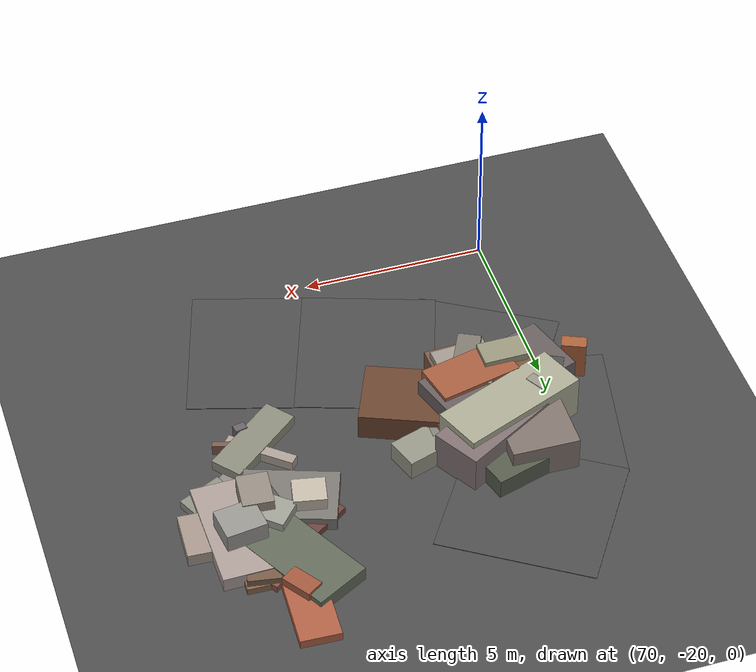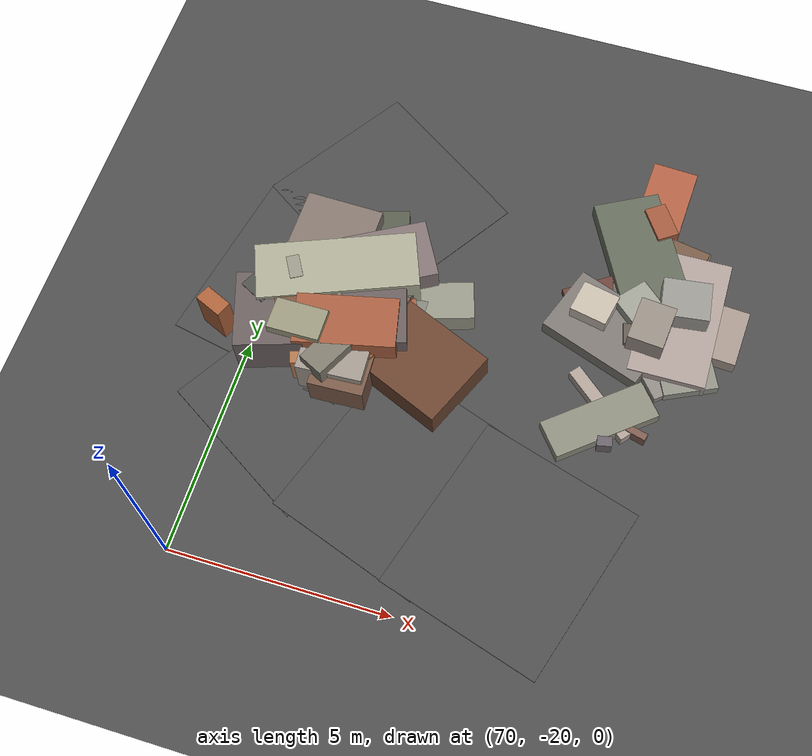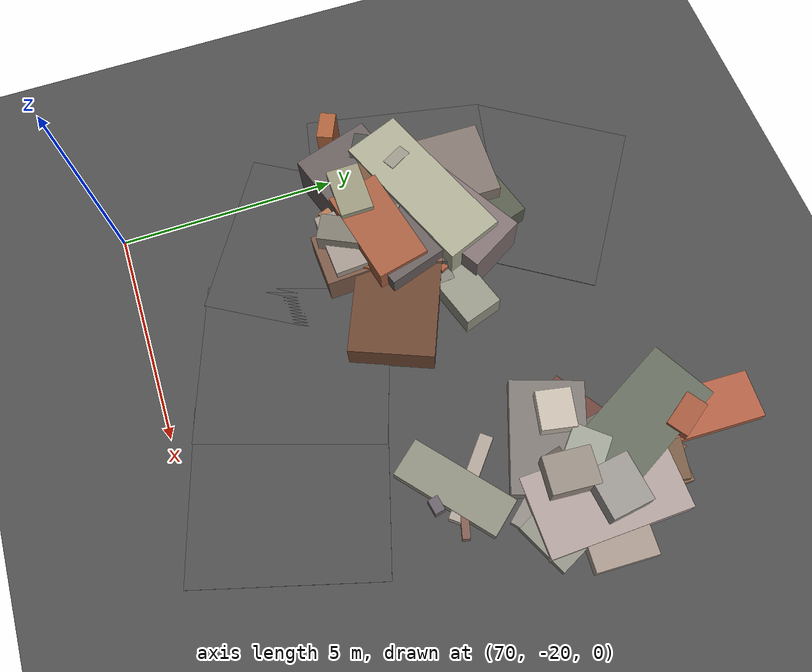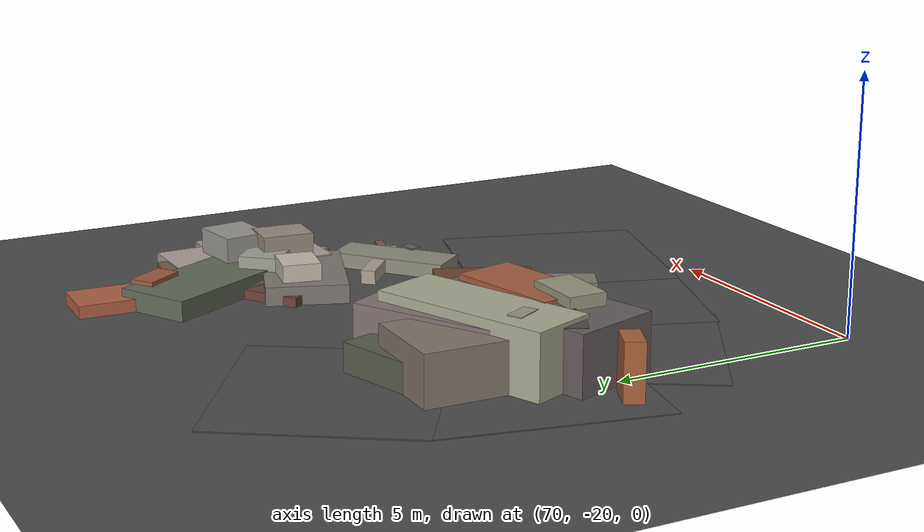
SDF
<sdf version="1.6">
 <world name="navitas_arena">
  <model name="ground_plane">
   <static>true</static>
   <link name="link">
    <collision name="collision">
     <geometry><plane><normal>0 0 1</normal><size>400 400</size></plane></geometry>
     <surface><friction><ode><mu>0.800</mu><mu2>0.800</mu2></ode></friction></surface>
    </collision>
    <visual name="visual">
     <cast_shadows>false</cast_shadows>
     <geometry><plane><normal>0 0 1</normal><size>400 400</size></plane></geometry>
     <material>
      <specular>0.04 0.04 0.04 1</specular>
      <script>
       <uri>file://media/materials/scripts/navitas_asphalt.material</uri>
       <name>Navitas/RealArenaAsphalt</name>
      </script>
     </material>
    </visual>
   </link>
  </model>
  <model name="road_zor_1_4">
   <static>true</static>
   <pose>76.927 -17.886 0.040 0 0 2.853</pose>
   <link name="link">
    <collision name="col"><geometry><box><size>3.825 4.200 0.020</size></box></geometry></collision>
    <visual name="vis">
     <geometry><box><size>3.825 4.200 0.020</size></box></geometry>
     <material>
      <specular>0.04 0.04 0.04 1</specular>
      <script>
       <uri>file://media/materials/scripts/navitas_asphalt.material</uri>
       <name>Navitas/RealArenaAsphalt</name>
      </script>
     </material>
    </visual>
   </link>
  </model>
  <model name="road_zor_1_5">
   <static>true</static>
   <pose>74.215 -17.017 0.040 0 0 2.810</pose>
   <link name="link">
    <collision name="col"><geometry><box><size>3.672 4.200 0.020</size></box></geometry></collision>
    <visual name="vis">
     <geometry><box><size>3.672 4.200 0.020</size></box></geometry>
     <material>
      <specular>0.04 0.04 0.04 1</specular>
      <script>
       <uri>file://media/materials/scripts/navitas_asphalt.material</uri>
       <name>Navitas/RealArenaAsphalt</name>
      </script>
     </material>
    </visual>
   </link>
  </model>
  <model name="road_zor_1_6">
   <static>true</static>
   <pose>71.618 -15.783 0.040 0 0 2.595</pose>
   <link name="link">
    <collision name="col"><geometry><box><size>3.911 4.200 0.020</size></box></geometry></collision>
    <visual name="vis">
     <geometry><box><size>3.911 4.200 0.020</size></box></geometry>
     <material>
      <specular>0.04 0.04 0.04 1</specular>
      <script>
       <uri>file://media/materials/scripts/navitas_asphalt.material</uri>
       <name>Navitas/RealArenaAsphalt</name>
      </script>
     </material>
    </visual>
   </link>
  </model>
  <model name="road_zor_1_7">
   <static>true</static>
   <pose>70.666 -13.328 0.040 0 0 1.373</pose>
   <link name="link">
    <collision name="col"><geometry><box><size>4.310 4.200 0.020</size></box></geometry></collision>
    <visual name="vis">
     <geometry><box><size>4.310 4.200 0.020</size></box></geometry>
     <material>
      <specular>0.04 0.04 0.04 1</specular>
      <script>
       <uri>file://media/materials/scripts/navitas_asphalt.material</uri>
       <name>Navitas/RealArenaAsphalt</name>
      </script>
     </material>
    </visual>
   </link>
  </model>
  <model name="road_zor_1_8">
   <static>true</static>
   <pose>71.809 -10.426 0.040 0 0 0.990</pose>
   <link name="link">
    <collision name="col"><geometry><box><size>3.844 4.200 0.020</size></box></geometry></collision>
    <visual name="vis">
     <geometry><box><size>3.844 4.200 0.020</size></box></geometry>
     <material>
      <specular>0.04 0.04 0.04 1</specular>
      <script>
       <uri>file://media/materials/scripts/navitas_asphalt.material</uri>
       <name>Navitas/RealArenaAsphalt</name>
      </script>
     </material>
    </visual>
   </link>
  </model>
  <model name="blk_zor_1_0_0">
   <static>true</static>
   <pose>71.746 -13.581 0.000 0 0 0</pose>
   <link name="link">
    <collision name="col_0">
     <pose>0.542 -0.612 0.416 0.000 0.000 1.613</pose>
     <geometry><box><size>3.251 1.247 0.833</size></box></geometry>
    </collision>
    <visual name="vis_0">
     <pose>0.542 -0.612 0.416 0.000 0.000 1.613</pose>
     <geometry><box><size>3.251 1.247 0.833</size></box></geometry>
     <material>
      <ambient>0.45 0.33 0.26 1</ambient>
      <diffuse>0.48 0.35 0.28 1</diffuse>
      <specular>0.05 0.05 0.045 1</specular>
     </material>
    </visual>
    <collision name="col_1">
     <pose>0.342 -1.020 0.516 0.000 0.000 1.627</pose>
     <geometry><box><size>1.991 1.494 1.031</size></box></geometry>
    </collision>
    <visual name="vis_1">
     <pose>0.342 -1.020 0.516 0.000 0.000 1.627</pose>
     <geometry><box><size>1.991 1.494 1.031</size></box></geometry>
     <material>
      <ambient>0.58 0.54 0.51 1</ambient>
      <diffuse>0.63 0.59 0.55 1</diffuse>
      <specular>0.05 0.05 0.045 1</specular>
     </material>
    </visual>
    <collision name="col_2">
     <pose>0.288 -0.485 0.595 0.000 0.000 4.145</pose>
     <geometry><box><size>2.302 0.295 1.190</size></box></geometry>
    </collision>
    <visual name="vis_2">
     <pose>0.288 -0.485 0.595 0.000 0.000 4.145</pose>
     <geometry><box><size>2.302 0.295 1.190</size></box></geometry>
     <material>
      <ambient>0.64 0.58 0.57 1</ambient>
      <diffuse>0.69 0.63 0.62 1</diffuse>
      <specular>0.05 0.05 0.045 1</specular>
     </material>
    </visual>
    <collision name="col_3">
     <pose>0.415 -0.786 0.655 0.000 0.000 3.367</pose>
     <geometry><box><size>2.267 1.190 1.309</size></box></geometry>
    </collision>
    <visual name="vis_3">
     <pose>0.415 -0.786 0.655 0.000 0.000 3.367</pose>
     <geometry><box><size>2.267 1.190 1.309</size></box></geometry>
     <material>
      <ambient>0.60 0.34 0.23 1</ambient>
      <diffuse>0.65 0.37 0.25 1</diffuse>
      <specular>0.05 0.05 0.045 1</specular>
     </material>
    </visual>
    <collision name="col_4">
     <pose>-0.790 -0.841 0.621 0.000 0.000 3.733</pose>
     <geometry><box><size>0.666 0.979 1.242</size></box></geometry>
    </collision>
    <visual name="vis_4">
     <pose>-0.790 -0.841 0.621 0.000 0.000 3.733</pose>
     <geometry><box><size>0.666 0.979 1.242</size></box></geometry>
     <material>
      <ambient>0.43 0.31 0.22 1</ambient>
      <diffuse>0.47 0.33 0.24 1</diffuse>
      <specular>0.05 0.05 0.045 1</specular>
     </material>
    </visual>
    <collision name="col_5">
     <pose>-0.656 0.826 0.511 0.000 0.000 1.552</pose>
     <geometry><box><size>2.773 1.798 1.023</size></box></geometry>
    </collision>
    <visual name="vis_5">
     <pose>-0.656 0.826 0.511 0.000 0.000 1.552</pose>
     <geometry><box><size>2.773 1.798 1.023</size></box></geometry>
     <material>
      <ambient>0.47 0.43 0.40 1</ambient>
      <diffuse>0.51 0.46 0.43 1</diffuse>
      <specular>0.05 0.05 0.045 1</specular>
     </material>
    </visual>
    <collision name="col_6">
     <pose>0.451 0.784 0.307 0.000 0.000 1.860</pose>
     <geometry><box><size>3.401 1.639 0.614</size></box></geometry>
    </collision>
    <visual name="vis_6">
     <pose>0.451 0.784 0.307 0.000 0.000 1.860</pose>
     <geometry><box><size>3.401 1.639 0.614</size></box></geometry>
     <material>
      <ambient>0.31 0.33 0.28 1</ambient>
      <diffuse>0.34 0.36 0.30 1</diffuse>
      <specular>0.05 0.05 0.045 1</specular>
     </material>
    </visual>
    <collision name="col_7">
     <pose>0.971 0.265 0.277 0.000 0.000 3.455</pose>
     <geometry><box><size>3.937 0.910 0.554</size></box></geometry>
    </collision>
    <visual name="vis_7">
     <pose>0.971 0.265 0.277 0.000 0.000 3.455</pose>
     <geometry><box><size>3.937 0.910 0.554</size></box></geometry>
     <material>
      <ambient>0.55 0.54 0.49 1</ambient>
      <diffuse>0.59 0.59 0.53 1</diffuse>
      <specular>0.05 0.05 0.045 1</specular>
     </material>
    </visual>
    <collision name="col_8">
     <pose>-0.226 0.462 0.647 0.000 0.000 3.524</pose>
     <geometry><box><size>3.614 1.349 1.294</size></box></geometry>
    </collision>
    <visual name="vis_8">
     <pose>-0.226 0.462 0.647 0.000 0.000 3.524</pose>
     <geometry><box><size>3.614 1.349 1.294</size></box></geometry>
     <material>
      <ambient>0.62 0.62 0.54 1</ambient>
      <diffuse>0.67 0.67 0.58 1</diffuse>
      <specular>0.05 0.05 0.045 1</specular>
     </material>
    </visual>
   </link>
  </model>
  <model name="blk_zor_1_0_1">
   <static>true</static>
   <pose>72.374 -14.775 0.000 0 0 0</pose>
   <link name="link">
    <collision name="col_0">
     <pose>-0.674 -0.104 0.427 0.000 0.000 3.498</pose>
     <geometry><box><size>1.330 0.849 0.855</size></box></geometry>
    </collision>
    <visual name="vis_0">
     <pose>-0.674 -0.104 0.427 0.000 0.000 3.498</pose>
     <geometry><box><size>1.330 0.849 0.855</size></box></geometry>
     <material>
      <ambient>0.64 0.43 0.28 1</ambient>
      <diffuse>0.69 0.46 0.30 1</diffuse>
      <specular>0.05 0.05 0.045 1</specular>
     </material>
    </visual>
    <collision name="col_1">
     <pose>0.456 0.495 0.430 0.000 0.000 4.393</pose>
     <geometry><box><size>2.258 0.170 0.861</size></box></geometry>
    </collision>
    <visual name="vis_1">
     <pose>0.456 0.495 0.430 0.000 0.000 4.393</pose>
     <geometry><box><size>2.258 0.170 0.861</size></box></geometry>
     <material>
      <ambient>0.50 0.35 0.26 1</ambient>
      <diffuse>0.54 0.38 0.29 1</diffuse>
      <specular>0.05 0.05 0.045 1</specular>
     </material>
    </visual>
    <collision name="col_2">
     <pose>-0.353 -0.331 0.654 0.000 0.000 4.251</pose>
     <geometry><box><size>1.123 0.624 1.308</size></box></geometry>
    </collision>
    <visual name="vis_2">
     <pose>-0.353 -0.331 0.654 0.000 0.000 4.251</pose>
     <geometry><box><size>1.123 0.624 1.308</size></box></geometry>
     <material>
      <ambient>0.46 0.44 0.39 1</ambient>
      <diffuse>0.50 0.48 0.43 1</diffuse>
      <specular>0.05 0.05 0.045 1</specular>
     </material>
    </visual>
    <collision name="col_3">
     <pose>0.271 0.874 0.414 0.000 0.000 4.167</pose>
     <geometry><box><size>2.174 0.314 0.829</size></box></geometry>
    </collision>
    <visual name="vis_3">
     <pose>0.271 0.874 0.414 0.000 0.000 4.167</pose>
     <geometry><box><size>2.174 0.314 0.829</size></box></geometry>
     <material>
      <ambient>0.36 0.35 0.34 1</ambient>
      <diffuse>0.39 0.38 0.37 1</diffuse>
      <specular>0.05 0.05 0.045 1</specular>
     </material>
    </visual>
    <collision name="col_4">
     <pose>0.497 0.670 0.376 0.000 0.000 2.741</pose>
     <geometry><box><size>4.518 1.894 0.753</size></box></geometry>
    </collision>
    <visual name="vis_4">
     <pose>0.497 0.670 0.376 0.000 0.000 2.741</pose>
     <geometry><box><size>4.518 1.894 0.753</size></box></geometry>
     <material>
      <ambient>0.39 0.25 0.18 1</ambient>
      <diffuse>0.42 0.27 0.19 1</diffuse>
      <specular>0.05 0.05 0.045 1</specular>
     </material>
    </visual>
    <collision name="col_5">
     <pose>0.174 0.402 0.447 0.000 0.000 4.234</pose>
     <geometry><box><size>0.986 1.074 0.893</size></box></geometry>
    </collision>
    <visual name="vis_5">
     <pose>0.174 0.402 0.447 0.000 0.000 4.234</pose>
     <geometry><box><size>0.986 1.074 0.893</size></box></geometry>
     <material>
      <ambient>0.55 0.32 0.17 1</ambient>
      <diffuse>0.60 0.35 0.19 1</diffuse>
      <specular>0.05 0.05 0.045 1</specular>
     </material>
    </visual>
    <collision name="col_6">
     <pose>-0.442 0.271 0.602 0.000 0.000 3.831</pose>
     <geometry><box><size>0.729 1.206 1.204</size></box></geometry>
    </collision>
    <visual name="vis_6">
     <pose>-0.442 0.271 0.602 0.000 0.000 3.831</pose>
     <geometry><box><size>0.729 1.206 1.204</size></box></geometry>
     <material>
      <ambient>0.31 0.29 0.28 1</ambient>
      <diffuse>0.33 0.32 0.30 1</diffuse>
      <specular>0.05 0.05 0.045 1</specular>
     </material>
    </visual>
   </link>
  </model>
  <model name="blk_zor_1_0_2">
   <static>true</static>
   <pose>72.330 -13.737 0.000 0 0 0</pose>
   <link name="link">
    <collision name="col_0">
     <pose>-0.218 0.634 0.325 0.000 0.000 2.073</pose>
     <geometry><box><size>1.685 1.347 0.651</size></box></geometry>
    </collision>
    <visual name="vis_0">
     <pose>-0.218 0.634 0.325 0.000 0.000 2.073</pose>
     <geometry><box><size>1.685 1.347 0.651</size></box></geometry>
     <material>
      <ambient>0.44 0.47 0.41 1</ambient>
      <diffuse>0.48 0.51 0.45 1</diffuse>
      <specular>0.05 0.05 0.045 1</specular>
     </material>
    </visual>
    <collision name="col_1">
     <pose>-0.588 -0.336 0.632 0.000 0.000 0.926</pose>
     <geometry><box><size>0.621 0.285 1.265</size></box></geometry>
    </collision>
    <visual name="vis_1">
     <pose>-0.588 -0.336 0.632 0.000 0.000 0.926</pose>
     <geometry><box><size>0.621 0.285 1.265</size></box></geometry>
     <material>
      <ambient>0.49 0.50 0.44 1</ambient>
      <diffuse>0.53 0.54 0.47 1</diffuse>
      <specular>0.05 0.05 0.045 1</specular>
     </material>
    </visual>
    <collision name="col_2">
     <pose>0.048 0.085 0.341 0.000 0.000 0.425</pose>
     <geometry><box><size>2.203 0.199 0.682</size></box></geometry>
    </collision>
    <visual name="vis_2">
     <pose>0.048 0.085 0.341 0.000 0.000 0.425</pose>
     <geometry><box><size>2.203 0.199 0.682</size></box></geometry>
     <material>
      <ambient>0.60 0.34 0.23 1</ambient>
      <diffuse>0.65 0.37 0.25 1</diffuse>
      <specular>0.05 0.05 0.045 1</specular>
     </material>
    </visual>
    <collision name="col_3">
     <pose>-0.518 0.870 0.551 0.000 0.000 0.520</pose>
     <geometry><box><size>3.598 1.395 1.103</size></box></geometry>
    </collision>
    <visual name="vis_3">
     <pose>-0.518 0.870 0.551 0.000 0.000 0.520</pose>
     <geometry><box><size>3.598 1.395 1.103</size></box></geometry>
     <material>
      <ambient>0.47 0.42 0.42 1</ambient>
      <diffuse>0.51 0.45 0.45 1</diffuse>
      <specular>0.05 0.05 0.045 1</specular>
     </material>
    </visual>
    <collision name="col_4">
     <pose>0.292 0.207 0.279 0.000 0.000 0.037</pose>
     <geometry><box><size>2.020 0.878 0.558</size></box></geometry>
    </collision>
    <visual name="vis_4">
     <pose>0.292 0.207 0.279 0.000 0.000 0.037</pose>
     <geometry><box><size>2.020 0.878 0.558</size></box></geometry>
     <material>
      <ambient>0.48 0.47 0.45 1</ambient>
      <diffuse>0.51 0.51 0.48 1</diffuse>
      <specular>0.05 0.05 0.045 1</specular>
     </material>
    </visual>
    <collision name="col_5">
     <pose>0.026 0.280 0.487 0.000 0.000 1.017</pose>
     <geometry><box><size>0.377 0.548 0.973</size></box></geometry>
    </collision>
    <visual name="vis_5">
     <pose>0.026 0.280 0.487 0.000 0.000 1.017</pose>
     <geometry><box><size>0.377 0.548 0.973</size></box></geometry>
     <material>
      <ambient>0.49 0.36 0.26 1</ambient>
      <diffuse>0.53 0.39 0.28 1</diffuse>
      <specular>0.05 0.05 0.045 1</specular>
     </material>
    </visual>
    <collision name="col_6">
     <pose>-0.185 -0.710 0.467 0.000 0.000 1.906</pose>
     <geometry><box><size>1.236 0.914 0.934</size></box></geometry>
    </collision>
    <visual name="vis_6">
     <pose>-0.185 -0.710 0.467 0.000 0.000 1.906</pose>
     <geometry><box><size>1.236 0.914 0.934</size></box></geometry>
     <material>
      <ambient>0.38 0.38 0.36 1</ambient>
      <diffuse>0.41 0.41 0.39 1</diffuse>
      <specular>0.05 0.05 0.045 1</specular>
     </material>
    </visual>
   </link>
  </model>
  <model name="blk_zor_1_0_5">
   <static>true</static>
   <pose>70.320 -14.425 0.000 0 0 0</pose>
   <link name="link">
    <collision name="col_0">
     <pose>0.320 0.991 0.656 0.000 0.000 2.090</pose>
     <geometry><box><size>0.559 0.292 1.313</size></box></geometry>
    </collision>
    <visual name="vis_0">
     <pose>0.320 0.991 0.656 0.000 0.000 2.090</pose>
     <geometry><box><size>0.559 0.292 1.313</size></box></geometry>
     <material>
      <ambient>0.56 0.55 0.49 1</ambient>
      <diffuse>0.60 0.59 0.53 1</diffuse>
      <specular>0.05 0.05 0.045 1</specular>
     </material>
    </visual>
    <collision name="col_1">
     <pose>0.863 -0.278 0.724 0.000 0.000 1.578</pose>
     <geometry><box><size>0.745 1.185 1.448</size></box></geometry>
    </collision>
    <visual name="vis_1">
     <pose>0.863 -0.278 0.724 0.000 0.000 1.578</pose>
     <geometry><box><size>0.745 1.185 1.448</size></box></geometry>
     <material>
      <ambient>0.55 0.55 0.45 1</ambient>
      <diffuse>0.60 0.59 0.49 1</diffuse>
      <specular>0.05 0.05 0.045 1</specular>
     </material>
    </visual>
    <collision name="col_2">
     <pose>1.182 0.252 0.600 0.000 0.000 0.311</pose>
     <geometry><box><size>3.783 1.804 1.201</size></box></geometry>
    </collision>
    <visual name="vis_2">
     <pose>1.182 0.252 0.600 0.000 0.000 0.311</pose>
     <geometry><box><size>3.783 1.804 1.201</size></box></geometry>
     <material>
      <ambient>0.38 0.34 0.35 1</ambient>
      <diffuse>0.41 0.37 0.37 1</diffuse>
      <specular>0.05 0.05 0.045 1</specular>
     </material>
    </visual>
    <collision name="col_3">
     <pose>-1.153 -0.262 0.570 0.000 0.000 -0.415</pose>
     <geometry><box><size>0.669 0.374 1.139</size></box></geometry>
    </collision>
    <visual name="vis_3">
     <pose>-1.153 -0.262 0.570 0.000 0.000 -0.415</pose>
     <geometry><box><size>0.669 0.374 1.139</size></box></geometry>
     <material>
      <ambient>0.62 0.35 0.22 1</ambient>
      <diffuse>0.67 0.38 0.23 1</diffuse>
      <specular>0.05 0.05 0.045 1</specular>
     </material>
    </visual>
    <collision name="col_4">
     <pose>0.849 0.305 0.544 0.000 0.000 0.505</pose>
     <geometry><box><size>0.544 0.638 1.088</size></box></geometry>
    </collision>
    <visual name="vis_4">
     <pose>0.849 0.305 0.544 0.000 0.000 0.505</pose>
     <geometry><box><size>0.544 0.638 1.088</size></box></geometry>
     <material>
      <ambient>0.32 0.30 0.27 1</ambient>
      <diffuse>0.34 0.33 0.30 1</diffuse>
      <specular>0.05 0.05 0.045 1</specular>
     </material>
    </visual>
    <collision name="col_5">
     <pose>1.252 0.167 0.446 0.000 0.000 -0.133</pose>
     <geometry><box><size>1.514 0.226 0.891</size></box></geometry>
    </collision>
    <visual name="vis_5">
     <pose>1.252 0.167 0.446 0.000 0.000 -0.133</pose>
     <geometry><box><size>1.514 0.226 0.891</size></box></geometry>
     <material>
      <ambient>0.55 0.34 0.22 1</ambient>
      <diffuse>0.60 0.36 0.24 1</diffuse>
      <specular>0.05 0.05 0.045 1</specular>
     </material>
    </visual>
    <collision name="col_6">
     <pose>0.762 0.514 0.291 0.000 0.000 0.065</pose>
     <geometry><box><size>2.589 0.181 0.582</size></box></geometry>
    </collision>
    <visual name="vis_6">
     <pose>0.762 0.514 0.291 0.000 0.000 0.065</pose>
     <geometry><box><size>2.589 0.181 0.582</size></box></geometry>
     <material>
      <ambient>0.69 0.67 0.57 1</ambient>
      <diffuse>0.74 0.72 0.62 1</diffuse>
      <specular>0.05 0.05 0.045 1</specular>
     </material>
    </visual>
    <collision name="col_7">
     <pose>-0.157 0.579 0.606 0.000 0.000 -0.478</pose>
     <geometry><box><size>0.661 1.001 1.211</size></box></geometry>
    </collision>
    <visual name="vis_7">
     <pose>-0.157 0.579 0.606 0.000 0.000 -0.478</pose>
     <geometry><box><size>0.661 1.001 1.211</size></box></geometry>
     <material>
      <ambient>0.27 0.29 0.27 1</ambient>
      <diffuse>0.30 0.31 0.29 1</diffuse>
      <specular>0.05 0.05 0.045 1</specular>
     </material>
    </visual>
   </link>
  </model>
  <model name="deb_zor_27">
   <static>true</static>
   <pose>79.152 -11.673 0.000 0 0 0</pose>
   <link name="link">
    <collision name="col_0">
     <pose>0.084 -0.085 0.181 0.000 0.000 3.090</pose>
     <geometry><box><size>2.748 1.367 0.362</size></box></geometry>
    </collision>
    <visual name="vis_0">
     <pose>0.084 -0.085 0.181 0.000 0.000 3.090</pose>
     <geometry><box><size>2.748 1.367 0.362</size></box></geometry>
     <material>
      <ambient>0.60 0.55 0.51 1</ambient>
      <diffuse>0.65 0.59 0.55 1</diffuse>
      <specular>0.05 0.05 0.045 1</specular>
     </material>
    </visual>
    <collision name="col_1">
     <pose>-0.007 -0.020 0.202 0.000 0.000 1.584</pose>
     <geometry><box><size>3.178 1.765 0.404</size></box></geometry>
    </collision>
    <visual name="vis_1">
     <pose>-0.007 -0.020 0.202 0.000 0.000 1.584</pose>
     <geometry><box><size>3.178 1.765 0.404</size></box></geometry>
     <material>
      <ambient>0.63 0.58 0.56 1</ambient>
      <diffuse>0.68 0.62 0.60 1</diffuse>
      <specular>0.05 0.05 0.045 1</specular>
     </material>
    </visual>
    <collision name="col_2">
     <pose>0.041 -0.440 0.125 0.000 0.000 2.015</pose>
     <geometry><box><size>2.768 1.242 0.250</size></box></geometry>
    </collision>
    <visual name="vis_2">
     <pose>0.041 -0.440 0.125 0.000 0.000 2.015</pose>
     <geometry><box><size>2.768 1.242 0.250</size></box></geometry>
     <material>
      <ambient>0.52 0.52 0.48 1</ambient>
      <diffuse>0.56 0.56 0.52 1</diffuse>
      <specular>0.05 0.05 0.045 1</specular>
     </material>
    </visual>
    <collision name="col_3">
     <pose>0.029 0.452 0.099 0.000 0.000 2.226</pose>
     <geometry><box><size>3.003 1.248 0.198</size></box></geometry>
    </collision>
    <visual name="vis_3">
     <pose>0.029 0.452 0.099 0.000 0.000 2.226</pose>
     <geometry><box><size>3.003 1.248 0.198</size></box></geometry>
     <material>
      <ambient>0.48 0.30 0.26 1</ambient>
      <diffuse>0.52 0.33 0.28 1</diffuse>
      <specular>0.05 0.05 0.045 1</specular>
     </material>
    </visual>
    <collision name="col_4">
     <pose>0.016 0.170 0.462 0.000 0.000 3.273</pose>
     <geometry><box><size>1.097 0.947 0.924</size></box></geometry>
    </collision>
    <visual name="vis_4">
     <pose>0.016 0.170 0.462 0.000 0.000 3.273</pose>
     <geometry><box><size>1.097 0.947 0.924</size></box></geometry>
     <material>
      <ambient>0.56 0.55 0.53 1</ambient>
      <diffuse>0.60 0.59 0.57 1</diffuse>
      <specular>0.05 0.05 0.045 1</specular>
     </material>
    </visual>
    <collision name="col_5">
     <pose>0.019 0.336 0.144 0.000 0.000 1.282</pose>
     <geometry><box><size>1.587 0.136 0.288</size></box></geometry>
    </collision>
    <visual name="vis_5">
     <pose>0.019 0.336 0.144 0.000 0.000 1.282</pose>
     <geometry><box><size>1.587 0.136 0.288</size></box></geometry>
     <material>
      <ambient>0.40 0.37 0.36 1</ambient>
      <diffuse>0.43 0.40 0.39 1</diffuse>
      <specular>0.05 0.05 0.045 1</specular>
     </material>
    </visual>
    <collision name="col_6">
     <pose>0.251 0.234 0.188 0.000 0.000 2.226</pose>
     <geometry><box><size>1.001 0.234 0.376</size></box></geometry>
    </collision>
    <visual name="vis_6">
     <pose>0.251 0.234 0.188 0.000 0.000 2.226</pose>
     <geometry><box><size>1.001 0.234 0.376</size></box></geometry>
     <material>
      <ambient>0.39 0.26 0.17 1</ambient>
      <diffuse>0.43 0.28 0.19 1</diffuse>
      <specular>0.05 0.05 0.045 1</specular>
     </material>
    </visual>
   </link>
  </model>
  <model name="deb_zor_44">
   <static>true</static>
   <pose>77.828 -12.080 0.000 0 0 0</pose>
   <link name="link">
    <collision name="col_0">
     <pose>-0.603 -0.000 0.365 0.000 0.000 2.943</pose>
     <geometry><box><size>0.869 0.772 0.730</size></box></geometry>
    </collision>
    <visual name="vis_0">
     <pose>-0.603 -0.000 0.365 0.000 0.000 2.943</pose>
     <geometry><box><size>0.869 0.772 0.730</size></box></geometry>
     <material>
      <ambient>0.72 0.67 0.62 1</ambient>
      <diffuse>0.77 0.73 0.67 1</diffuse>
      <specular>0.05 0.05 0.045 1</specular>
     </material>
    </visual>
    <collision name="col_1">
     <pose>0.275 0.045 0.091 0.000 0.000 1.300</pose>
     <geometry><box><size>2.147 0.170 0.182</size></box></geometry>
    </collision>
    <visual name="vis_1">
     <pose>0.275 0.045 0.091 0.000 0.000 1.300</pose>
     <geometry><box><size>2.147 0.170 0.182</size></box></geometry>
     <material>
      <ambient>0.62 0.39 0.25 1</ambient>
      <diffuse>0.67 0.42 0.27 1</diffuse>
      <specular>0.05 0.05 0.045 1</specular>
     </material>
    </visual>
    <collision name="col_2">
     <pose>0.416 0.272 0.327 0.000 0.000 2.431</pose>
     <geometry><box><size>0.947 0.844 0.654</size></box></geometry>
    </collision>
    <visual name="vis_2">
     <pose>0.416 0.272 0.327 0.000 0.000 2.431</pose>
     <geometry><box><size>0.947 0.844 0.654</size></box></geometry>
     <material>
      <ambient>0.57 0.58 0.54 1</ambient>
      <diffuse>0.62 0.63 0.58 1</diffuse>
      <specular>0.05 0.05 0.045 1</specular>
     </material>
    </visual>
    <collision name="col_3">
     <pose>0.741 -0.236 0.477 0.000 0.000 1.486</pose>
     <geometry><box><size>1.045 0.821 0.953</size></box></geometry>
    </collision>
    <visual name="vis_3">
     <pose>0.741 -0.236 0.477 0.000 0.000 1.486</pose>
     <geometry><box><size>1.045 0.821 0.953</size></box></geometry>
     <material>
      <ambient>0.54 0.51 0.47 1</ambient>
      <diffuse>0.59 0.55 0.51 1</diffuse>
      <specular>0.05 0.05 0.045 1</specular>
     </material>
    </visual>
    <collision name="col_4">
     <pose>-0.174 -0.302 0.189 0.000 0.000 2.800</pose>
     <geometry><box><size>2.488 1.642 0.379</size></box></geometry>
    </collision>
    <visual name="vis_4">
     <pose>-0.174 -0.302 0.189 0.000 0.000 2.800</pose>
     <geometry><box><size>2.488 1.642 0.379</size></box></geometry>
     <material>
      <ambient>0.46 0.43 0.42 1</ambient>
      <diffuse>0.49 0.47 0.45 1</diffuse>
      <specular>0.05 0.05 0.045 1</specular>
     </material>
    </visual>
    <collision name="col_5">
     <pose>0.378 -0.493 0.072 0.000 0.000 2.840</pose>
     <geometry><box><size>0.376 0.307 0.144</size></box></geometry>
    </collision>
    <visual name="vis_5">
     <pose>0.378 -0.493 0.072 0.000 0.000 2.840</pose>
     <geometry><box><size>0.376 0.307 0.144</size></box></geometry>
     <material>
      <ambient>0.70 0.67 0.58 1</ambient>
      <diffuse>0.76 0.72 0.63 1</diffuse>
      <specular>0.05 0.05 0.045 1</specular>
     </material>
    </visual>
   </link>
  </model>
  <model name="deb_zor_250">
   <static>true</static>
   <pose>78.256 -14.658 0.000 0 0 0</pose>
   <link name="link">
    <collision name="col_0">
     <pose>-0.330 0.449 0.141 0.000 0.000 2.449</pose>
     <geometry><box><size>1.929 0.293 0.282</size></box></geometry>
    </collision>
    <visual name="vis_0">
     <pose>-0.330 0.449 0.141 0.000 0.000 2.449</pose>
     <geometry><box><size>1.929 0.293 0.282</size></box></geometry>
     <material>
      <ambient>0.63 0.58 0.55 1</ambient>
      <diffuse>0.68 0.63 0.59 1</diffuse>
      <specular>0.05 0.05 0.045 1</specular>
     </material>
    </visual>
    <collision name="col_1">
     <pose>-0.244 0.056 0.153 0.000 0.000 0.692</pose>
     <geometry><box><size>2.468 0.880 0.305</size></box></geometry>
    </collision>
    <visual name="vis_1">
     <pose>-0.244 0.056 0.153 0.000 0.000 0.692</pose>
     <geometry><box><size>2.468 0.880 0.305</size></box></geometry>
     <material>
      <ambient>0.51 0.51 0.46 1</ambient>
      <diffuse>0.55 0.55 0.49 1</diffuse>
      <specular>0.05 0.05 0.045 1</specular>
     </material>
    </visual>
    <collision name="col_2">
     <pose>-0.015 -0.429 0.170 0.000 0.000 3.340</pose>
     <geometry><box><size>0.329 0.231 0.340</size></box></geometry>
    </collision>
    <visual name="vis_2">
     <pose>-0.015 -0.429 0.170 0.000 0.000 3.340</pose>
     <geometry><box><size>0.329 0.231 0.340</size></box></geometry>
     <material>
      <ambient>0.38 0.35 0.38 1</ambient>
      <diffuse>0.41 0.38 0.41 1</diffuse>
      <specular>0.05 0.05 0.045 1</specular>
     </material>
    </visual>
    <collision name="col_3">
     <pose>0.279 0.071 0.152 0.000 0.000 2.885</pose>
     <geometry><box><size>1.140 0.168 0.304</size></box></geometry>
    </collision>
    <visual name="vis_3">
     <pose>0.279 0.071 0.152 0.000 0.000 2.885</pose>
     <geometry><box><size>1.140 0.168 0.304</size></box></geometry>
     <material>
      <ambient>0.45 0.33 0.28 1</ambient>
      <diffuse>0.49 0.36 0.31 1</diffuse>
      <specular>0.05 0.05 0.045 1</specular>
     </material>
    </visual>
   </link>
  </model>
  <model name="deb_zor_306">
   <static>true</static>
   <pose>77.864 -10.134 0.000 0 0 0</pose>
   <link name="link">
    <collision name="col_0">
     <pose>1.021 -0.459 0.189 0.000 0.000 1.405</pose>
     <geometry><box><size>1.548 0.877 0.378</size></box></geometry>
    </collision>
    <visual name="vis_0">
     <pose>1.021 -0.459 0.189 0.000 0.000 1.405</pose>
     <geometry><box><size>1.548 0.877 0.378</size></box></geometry>
     <material>
      <ambient>0.44 0.33 0.25 1</ambient>
      <diffuse>0.47 0.36 0.28 1</diffuse>
      <specular>0.05 0.05 0.045 1</specular>
     </material>
    </visual>
    <collision name="col_1">
     <pose>0.314 0.695 0.249 0.000 0.000 -0.962</pose>
     <geometry><box><size>0.859 0.504 0.498</size></box></geometry>
    </collision>
    <visual name="vis_1">
     <pose>0.314 0.695 0.249 0.000 0.000 -0.962</pose>
     <geometry><box><size>0.859 0.504 0.498</size></box></geometry>
     <material>
      <ambient>0.59 0.32 0.22 1</ambient>
      <diffuse>0.63 0.35 0.24 1</diffuse>
      <specular>0.05 0.05 0.045 1</specular>
     </material>
    </visual>
    <collision name="col_2">
     <pose>0.260 1.091 0.126 0.000 0.000 1.528</pose>
     <geometry><box><size>2.570 1.064 0.253</size></box></geometry>
    </collision>
    <visual name="vis_2">
     <pose>0.260 1.091 0.126 0.000 0.000 1.528</pose>
     <geometry><box><size>2.570 1.064 0.253</size></box></geometry>
     <material>
      <ambient>0.64 0.35 0.25 1</ambient>
      <diffuse>0.69 0.38 0.27 1</diffuse>
      <specular>0.05 0.05 0.045 1</specular>
     </material>
    </visual>
    <collision name="col_3">
     <pose>0.469 0.214 0.094 0.000 0.000 -0.028</pose>
     <geometry><box><size>2.289 0.307 0.188</size></box></geometry>
    </collision>
    <visual name="vis_3">
     <pose>0.469 0.214 0.094 0.000 0.000 -0.028</pose>
     <geometry><box><size>2.289 0.307 0.188</size></box></geometry>
     <material>
      <ambient>0.48 0.36 0.28 1</ambient>
      <diffuse>0.52 0.39 0.30 1</diffuse>
      <specular>0.05 0.05 0.045 1</specular>
     </material>
    </visual>
    <collision name="col_4">
     <pose>0.099 -0.255 0.206 0.000 0.000 -1.074</pose>
     <geometry><box><size>3.057 1.559 0.412</size></box></geometry>
    </collision>
    <visual name="vis_4">
     <pose>0.099 -0.255 0.206 0.000 0.000 -1.074</pose>
     <geometry><box><size>3.057 1.559 0.412</size></box></geometry>
     <material>
      <ambient>0.36 0.39 0.34 1</ambient>
      <diffuse>0.39 0.42 0.36 1</diffuse>
      <specular>0.05 0.05 0.045 1</specular>
     </material>
    </visual>
   </link>
  </model>
  <model name="deb_zor_337">
   <static>true</static>
   <pose>78.003 -11.645 0.000 0 0 0</pose>
   <link name="link">
    <collision name="col_0">
     <pose>-0.409 0.333 0.115 0.000 0.000 -1.381</pose>
     <geometry><box><size>1.641 0.180 0.230</size></box></geometry>
    </collision>
    <visual name="vis_0">
     <pose>-0.409 0.333 0.115 0.000 0.000 -1.381</pose>
     <geometry><box><size>1.641 0.180 0.230</size></box></geometry>
     <material>
      <ambient>0.38 0.37 0.34 1</ambient>
      <diffuse>0.41 0.40 0.36 1</diffuse>
      <specular>0.05 0.05 0.045 1</specular>
     </material>
    </visual>
    <collision name="col_1">
     <pose>0.136 0.186 0.097 0.000 0.000 0.589</pose>
     <geometry><box><size>3.140 1.578 0.194</size></box></geometry>
    </collision>
    <visual name="vis_1">
     <pose>0.136 0.186 0.097 0.000 0.000 0.589</pose>
     <geometry><box><size>3.140 1.578 0.194</size></box></geometry>
     <material>
      <ambient>0.39 0.24 0.21 1</ambient>
      <diffuse>0.42 0.26 0.23 1</diffuse>
      <specular>0.05 0.05 0.045 1</specular>
     </material>
    </visual>
    <collision name="col_2">
     <pose>0.408 -0.253 0.140 0.000 0.000 -1.267</pose>
     <geometry><box><size>2.549 0.962 0.281</size></box></geometry>
    </collision>
    <visual name="vis_2">
     <pose>0.408 -0.253 0.140 0.000 0.000 -1.267</pose>
     <geometry><box><size>2.549 0.962 0.281</size></box></geometry>
     <material>
      <ambient>0.46 0.33 0.27 1</ambient>
      <diffuse>0.50 0.36 0.29 1</diffuse>
      <specular>0.05 0.05 0.045 1</specular>
     </material>
    </visual>
    <collision name="col_3">
     <pose>0.825 0.452 0.075 0.000 0.000 -0.790</pose>
     <geometry><box><size>0.227 0.467 0.151</size></box></geometry>
    </collision>
    <visual name="vis_3">
     <pose>0.825 0.452 0.075 0.000 0.000 -0.790</pose>
     <geometry><box><size>0.227 0.467 0.151</size></box></geometry>
     <material>
      <ambient>0.45 0.33 0.24 1</ambient>
      <diffuse>0.49 0.35 0.26 1</diffuse>
      <specular>0.05 0.05 0.045 1</specular>
     </material>
    </visual>
    <collision name="col_4">
     <pose>0.663 -0.582 0.091 0.000 0.000 -0.865</pose>
     <geometry><box><size>2.818 1.393 0.182</size></box></geometry>
    </collision>
    <visual name="vis_4">
     <pose>0.663 -0.582 0.091 0.000 0.000 -0.865</pose>
     <geometry><box><size>2.818 1.393 0.182</size></box></geometry>
     <material>
      <ambient>0.52 0.50 0.47 1</ambient>
      <diffuse>0.56 0.54 0.51 1</diffuse>
      <specular>0.05 0.05 0.045 1</specular>
     </material>
    </visual>
    <collision name="col_5">
     <pose>0.436 -0.767 0.249 0.000 0.000 -1.330</pose>
     <geometry><box><size>0.497 0.892 0.498</size></box></geometry>
    </collision>
    <visual name="vis_5">
     <pose>0.436 -0.767 0.249 0.000 0.000 -1.330</pose>
     <geometry><box><size>0.497 0.892 0.498</size></box></geometry>
     <material>
      <ambient>0.35 0.33 0.29 1</ambient>
      <diffuse>0.38 0.35 0.32 1</diffuse>
      <specular>0.05 0.05 0.045 1</specular>
     </material>
    </visual>
   </link>
  </model>
 </world>
</sdf>
